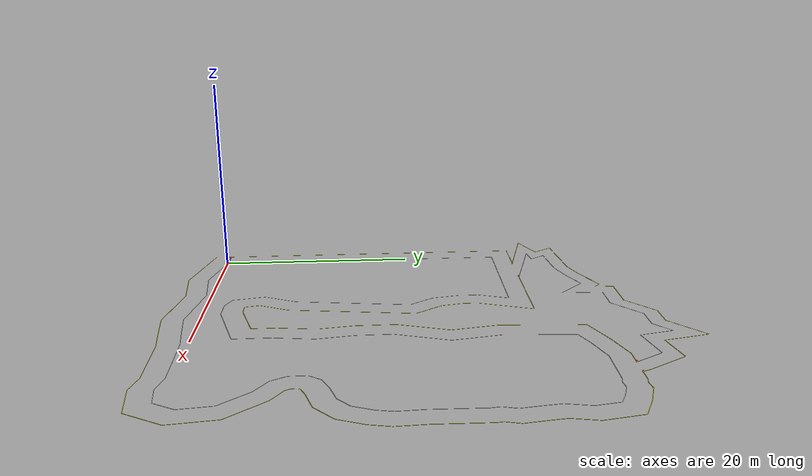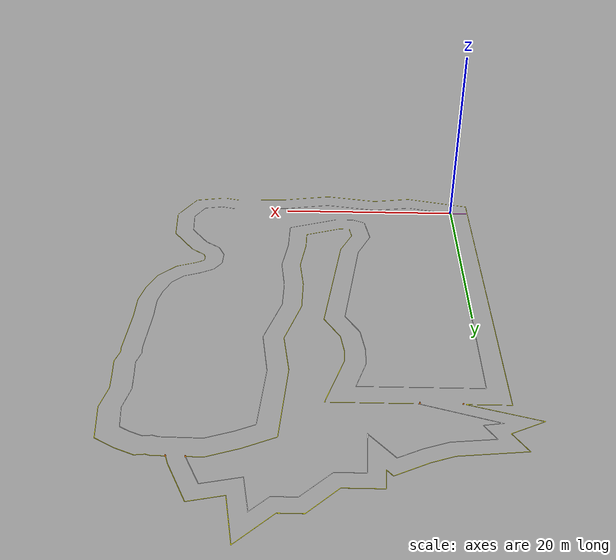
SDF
<?xml version="1.0"?>
<sdf version="1.5">
  <model name="track">
    <static>true</static>
    <link name="link">
      <collision name="collision">
        <geometry>
          <mesh>
            <uri>model://urdf/assets/CircuitRaceTrack.dae</uri>
            <scale>1.0 1.0 1.0</scale>
          </mesh>
        </geometry>
        <surface>
          <friction>
            <ode>
              <mu>100</mu>
              <mu2>50</mu2>
            </ode>
          </friction>
        </surface>
      </collision>
      <visual name="visual">
        <cast_shadows>false</cast_shadows>
        <geometry>
          <mesh>
            <uri>model://urdf/assets/CircuitRaceTrack.dae</uri>
            <scale>1.0 1.0 1.0</scale>
          </mesh>
        </geometry>
      </visual>
    </link>
  </model>
</sdf>
